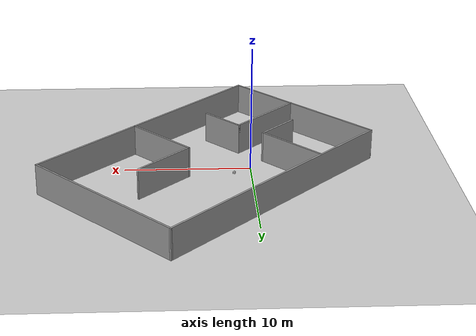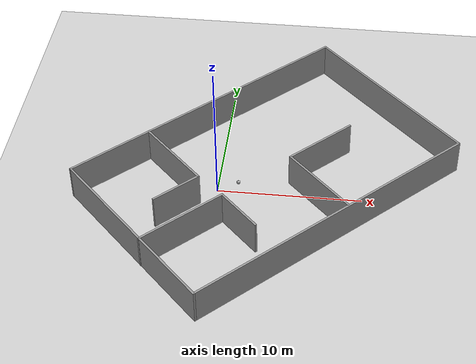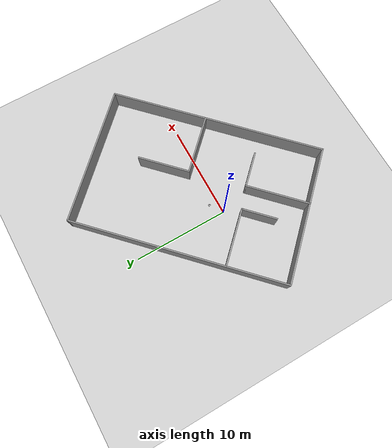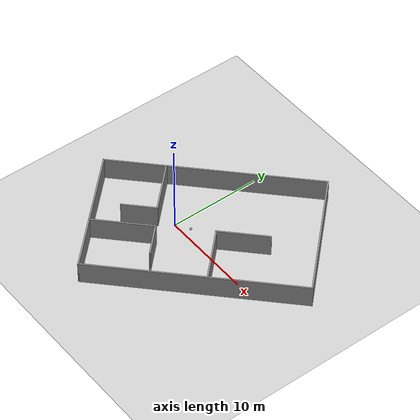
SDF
<sdf version="1.7">
 <world name="default">
  <light name="sun" type="directional">
   <pose>0 0 10 0 -0 0</pose>
   <diffuse>0.8 0.8 0.8 1</diffuse>
   <specular>0.2 0.2 0.2 1</specular>
   <attenuation>
    <range>1000</range>
    <constant>0.9</constant>
    <linear>0.01</linear>
    <quadratic>0.001</quadratic>
   </attenuation>
   <direction>-0.5 0.1 -0.9</direction>
   <spot><inner_angle>0</inner_angle><outer_angle>0</outer_angle><falloff>0</falloff></spot>
  </light>
  <model name="ground_plane">
   <static>1</static>
   <link name="link">
    <collision name="collision">
     <geometry><plane><normal>0 0 1</normal><size>100 100</size></plane></geometry>
     <surface><friction><ode><mu>100</mu><mu2>50</mu2></ode></friction></surface>
    </collision>
    <visual name="visual">
     <cast_shadows>0</cast_shadows>
     <geometry><plane><normal>0 0 1</normal><size>100 100</size></plane></geometry>
     <material>
      <script><uri>file://media/materials/scripts/gazebo.material</uri><name>Gazebo/Grey</name></script>
     </material>
    </visual>
   </link>
  </model>
  <gravity>0 0 -9.8</gravity>
  <magnetic_field>6e-06 2.3e-05 -4.2e-05</magnetic_field>
  <atmosphere type="adiabatic"/>
  <physics type="ode">
   <max_step_size>0.001</max_step_size>
   <real_time_factor>1</real_time_factor>
   <real_time_update_rate>1000</real_time_update_rate>
  </physics>
  <scene><ambient>0.4 0.4 0.4 1</ambient><background>0.7 0.7 0.7 1</background><shadows>1</shadows></scene>
  <audio><device>default</device></audio>
  <spherical_coordinates>
   <surface_model>EARTH_WGS84</surface_model>
   <latitude_deg>0</latitude_deg>
   <longitude_deg>0</longitude_deg>
   <elevation>0</elevation>
   <heading_deg>0</heading_deg>
  </spherical_coordinates>
  <model name="home">
   <pose>3.33692 1.20099 0 0 -0 0.770729</pose>
   <link name="Wall_15">
    <collision name="Wall_15_Collision">
     <geometry><box><size>14.5 0.15 2.5</size></box></geometry>
     <pose>0 0 1.25 0 -0 0</pose>
    </collision>
    <visual name="Wall_15_Visual">
     <pose>0 0 1.25 0 -0 0</pose>
     <geometry><box><size>14.5 0.15 2.5</size></box></geometry>
     <material>
      <script><uri>file://media/materials/scripts/gazebo.material</uri><name>Gazebo/Grey</name></script>
      <ambient>1 1 1 1</ambient>
     </material>
     <meta><layer>0</layer></meta>
    </visual>
    <pose>-11.2924 -9.4e-05 0 0 -0 -1.5708</pose>
   </link>
   <link name="Wall_16">
    <collision name="Wall_16_Collision">
     <geometry><box><size>22.75 0.15 2.5</size></box></geometry>
     <pose>0 0 1.25 0 -0 0</pose>
    </collision>
    <visual name="Wall_16_Visual">
     <pose>0 0 1.25 0 -0 0</pose>
     <geometry><box><size>22.75 0.15 2.5</size></box></geometry>
     <material>
      <script><uri>file://media/materials/scripts/gazebo.material</uri><name>Gazebo/Grey</name></script>
      <ambient>1 1 1 1</ambient>
     </material>
     <meta><layer>0</layer></meta>
    </visual>
    <pose>0.007836 -7.175 0 0 -0 8e-06</pose>
   </link>
   <link name="Wall_17">
    <collision name="Wall_17_Collision">
     <geometry><box><size>14.5 0.15 2.5</size></box></geometry>
     <pose>0 0 1.25 0 -0 0</pose>
    </collision>
    <visual name="Wall_17_Visual">
     <pose>0 0 1.25 0 -0 0</pose>
     <geometry><box><size>14.5 0.15 2.5</size></box></geometry>
     <material>
      <script><uri>file://media/materials/scripts/gazebo.material</uri><name>Gazebo/Grey</name></script>
      <ambient>1 1 1 1</ambient>
     </material>
     <meta><layer>0</layer></meta>
    </visual>
    <pose>11.3081 9.4e-05 0 0 -0 1.5708</pose>
   </link>
   <link name="Wall_19">
    <collision name="Wall_19_Collision">
     <geometry><box><size>22.7505 0.15 2.5</size></box></geometry>
     <pose>0 0 1.25 0 -0 0</pose>
    </collision>
    <visual name="Wall_19_Visual">
     <pose>0 0 1.25 0 -0 0</pose>
     <geometry><box><size>22.7505 0.15 2.5</size></box></geometry>
     <material>
      <script><uri>file://media/materials/scripts/gazebo.material</uri><name>Gazebo/Grey</name></script>
      <ambient>1 1 1 1</ambient>
     </material>
     <meta><layer>0</layer></meta>
    </visual>
    <pose>0.007836 7.175 0 0 -0 8e-06</pose>
   </link>
   <link name="Wall_21">
    <collision name="Wall_21_Collision">
     <geometry><box><size>6 0.15 2.5</size></box></geometry>
     <pose>0 0 1.25 0 -0 0</pose>
    </collision>
    <visual name="Wall_21_Visual">
     <pose>0 0 1.25 0 -0 0</pose>
     <geometry><box><size>6 0.15 2.5</size></box></geometry>
     <material>
      <script><uri>file://media/materials/scripts/gazebo.material</uri><name>Gazebo/Grey</name></script>
      <ambient>1 1 1 1</ambient>
     </material>
     <meta><layer>0</layer></meta>
    </visual>
    <pose>-4.92717 4.17629 0 0 -0 -1.5708</pose>
   </link>
   <link name="Wall_22">
    <collision name="Wall_22_Collision">
     <geometry><box><size>3.75 0.15 2.5</size></box></geometry>
     <pose>0 0 1.25 0 -0 0</pose>
    </collision>
    <visual name="Wall_22_Visual">
     <pose>0 0 1.25 0 -0 0</pose>
     <geometry><box><size>3.75 0.15 2.5</size></box></geometry>
     <material>
      <script><uri>file://media/materials/scripts/gazebo.material</uri><name>Gazebo/Grey</name></script>
      <ambient>1 1 1 1</ambient>
     </material>
     <meta><layer>0</layer></meta>
    </visual>
    <pose>-6.72717 1.25129 0 0 -0 3.14159</pose>
   </link>
   <link name="Wall_26">
    <collision name="Wall_26_Collision">
     <geometry><box><size>6.75 0.15 2.5</size></box></geometry>
     <pose>0 0 1.25 0 -0 0</pose>
    </collision>
    <visual name="Wall_26_Visual">
     <pose>0 0 1.25 0 -0 0</pose>
     <geometry><box><size>6.75 0.15 2.5</size></box></geometry>
     <material>
      <script><uri>file://media/materials/scripts/gazebo.material</uri><name>Gazebo/Grey</name></script>
      <ambient>1 1 1 1</ambient>
     </material>
     <meta><layer>0</layer></meta>
    </visual>
    <pose>-8.00808 -1.18825 0 0 -0 0</pose>
   </link>
   <link name="Wall_27">
    <collision name="Wall_27_Collision">
     <geometry><box><size>3.75 0.15 2.5</size></box></geometry>
     <pose>0 0 1.25 0 -0 0</pose>
    </collision>
    <visual name="Wall_27_Visual">
     <pose>0 0 1.25 0 -0 0</pose>
     <geometry><box><size>3.75 0.15 2.5</size></box></geometry>
     <material>
      <script><uri>file://media/materials/scripts/gazebo.material</uri><name>Gazebo/Grey</name></script>
      <ambient>1 1 1 1</ambient>
     </material>
     <meta><layer>0</layer></meta>
    </visual>
    <pose>-4.70808 -2.98825 0 0 -0 -1.5708</pose>
   </link>
   <link name="Wall_29">
    <collision name="Wall_29_Collision">
     <geometry><box><size>6.25 0.15 2.5</size></box></geometry>
     <pose>0 0 1.25 0 -0 0</pose>
    </collision>
    <visual name="Wall_29_Visual">
     <pose>0 0 1.25 0 -0 0</pose>
     <geometry><box><size>6.25 0.15 2.5</size></box></geometry>
     <material>
      <script><uri>file://media/materials/scripts/gazebo.material</uri><name>Gazebo/Grey</name></script>
      <ambient>1 1 1 1</ambient>
     </material>
     <meta><layer>0</layer></meta>
    </visual>
    <pose>1.23392 -4.10334 0 0 -0 1.5708</pose>
   </link>
   <link name="Wall_30">
    <collision name="Wall_30_Collision">
     <geometry><box><size>5.5 0.15 2.5</size></box></geometry>
     <pose>0 0 1.25 0 -0 0</pose>
    </collision>
    <visual name="Wall_30_Visual">
     <pose>0 0 1.25 0 -0 0</pose>
     <geometry><box><size>5.5 0.15 2.5</size></box></geometry>
     <material>
      <script><uri>file://media/materials/scripts/gazebo.material</uri><name>Gazebo/Grey</name></script>
      <ambient>1 1 1 1</ambient>
     </material>
     <meta><layer>0</layer></meta>
    </visual>
    <pose>3.90892 -1.05334 0 0 -0 0</pose>
   </link>
   <static>1</static>
  </model>
  <model name="car">
   <link name="base_footprint">
    <inertial>
     <pose>0.000926 0 0.095565 0 -0 0</pose>
     <mass>1.08</mass>
     <inertia>
      <ixx>0.00465223</ixx>
      <ixy>0</ixy>
      <ixz>-7.04352e-05</ixz>
      <iyy>0.0048713</iyy>
      <iyz>0</iyz>
      <izz>0.00524496</izz>
     </inertia>
    </inertial>
    <collision name="base_footprint_fixed_joint_lump__base_link_collision">
     <pose>0 0 0.091 0 -0 0</pose>
     <geometry><cylinder><length>0.12</length><radius>0.12</radius></cylinder></geometry>
    </collision>
    <collision name="base_footprint_fixed_joint_lump__back_caster_link_collision_1">
     <pose>-0.08 0 0.015 0 -0 0</pose>
     <geometry><sphere><radius>0.016</radius></sphere></geometry>
     <surface>
      <contact><ode><kp>1e+09</kp><kd>1</kd></ode></contact>
      <friction><ode><mu>0</mu><mu2>0</mu2></ode></friction>
     </surface>
    </collision>
    <collision name="base_footprint_fixed_joint_lump__camera_link_collision_2">
     <pose>0.1 0 0.166 0 -0 0</pose>
     <geometry><box><size>0.02 0.1 0.02</size></box></geometry>
    </collision>
    <collision name="base_footprint_fixed_joint_lump__front_caster_link_collision_3">
     <pose>0.08 0 0.015 0 -0 0</pose>
     <geometry><sphere><radius>0.016</radius></sphere></geometry>
     <surface>
      <contact><ode><kp>1e+09</kp><kd>1</kd></ode></contact>
      <friction><ode><mu>0</mu><mu2>0</mu2></ode></friction>
     </surface>
    </collision>
    <collision name="base_footprint_fixed_joint_lump__imu_link_collision_4">
     <pose>0 0 0.111 0 -0 0</pose>
     <geometry><box><size>0.02 0.02 0.02</size></box></geometry>
    </collision>
    <collision name="base_footprint_fixed_joint_lump__laser_cylinder_link_collision_5">
     <pose>0 0 0.191 0 -0 0</pose>
     <geometry><cylinder><length>0.1</length><radius>0.01</radius></cylinder></geometry>
    </collision>
    <collision name="base_footprint_fixed_joint_lump__laser_link_collision_6">
     <pose>0 0 0.241 0 -0 0</pose>
     <geometry><cylinder><length>0.02</length><radius>0.02</radius></cylinder></geometry>
    </collision>
    <visual name="base_footprint_fixed_joint_lump__base_link_visual">
     <pose>0 0 0.091 0 -0 0</pose>
     <geometry><cylinder><length>0.12</length><radius>0.12</radius></cylinder></geometry>
    </visual>
    <visual name="base_footprint_fixed_joint_lump__back_caster_link_visual_1">
     <pose>-0.08 0 0.015 0 -0 0</pose>
     <geometry><sphere><radius>0.016</radius></sphere></geometry>
    </visual>
    <visual name="base_footprint_fixed_joint_lump__camera_link_visual_2">
     <pose>0.1 0 0.166 0 -0 0</pose>
     <geometry><box><size>0.02 0.1 0.02</size></box></geometry>
    </visual>
    <visual name="base_footprint_fixed_joint_lump__front_caster_link_visual_3">
     <pose>0.08 0 0.015 0 -0 0</pose>
     <geometry><sphere><radius>0.016</radius></sphere></geometry>
    </visual>
    <visual name="base_footprint_fixed_joint_lump__imu_link_visual_4">
     <pose>0 0 0.111 0 -0 0</pose>
     <geometry><box><size>0.02 0.02 0.02</size></box></geometry>
    </visual>
    <visual name="base_footprint_fixed_joint_lump__laser_cylinder_link_visual_5">
     <pose>0 0 0.191 0 -0 0</pose>
     <geometry><cylinder><length>0.1</length><radius>0.01</radius></cylinder></geometry>
     <material>
      <script><name>Gazebo/Black</name><uri>file://media/materials/scripts/gazebo.material</uri></script>
     </material>
    </visual>
    <visual name="base_footprint_fixed_joint_lump__laser_link_visual_6">
     <pose>0 0 0.241 0 -0 0</pose>
     <geometry><cylinder><length>0.02</length><radius>0.02</radius></cylinder></geometry>
     <material>
      <script><name>Gazebo/Black</name><uri>file://media/materials/scripts/gazebo.material</uri></script>
     </material>
    </visual>
    <sensor name="camera_sensor" type="depth">
     <plugin name="depth_camera" filename="libgazebo_ros_camera.so">
      <frame_name>camera_optical_link</frame_name>
     </plugin>
     <always_on>1</always_on>
     <update_rate>10</update_rate>
     <camera name="camera">
      <horizontal_fov>1.50098</horizontal_fov>
      <image><width>800</width><height>600</height><format>R8G8B8</format></image>
      <distortion><k1>0</k1><k2>0</k2><k3>0</k3><p1>0</p1><p2>0</p2><center>0.5 0.5</center></distortion>
      <clip><near>0.1</near><far>100</far></clip>
     </camera>
     <pose>0.1 0 0.166 0 -0 0</pose>
    </sensor>
    <sensor name="imu_sensor" type="imu">
     <plugin name="imu_plugin" filename="libgazebo_ros_imu_sensor.so">
      <ros><namespace>/</namespace><remapping>~/out:=imu</remapping></ros>
      <initial_orientation_as_reference>0</initial_orientation_as_reference>
     </plugin>
     <update_rate>100</update_rate>
     <always_on>1</always_on>
     <imu>
      <angular_velocity>
       <x>
        <noise type="gaussian">
         <mean>0</mean>
         <stddev>0.0002</stddev>
         <bias_mean>7.5e-06</bias_mean>
         <bias_stddev>8e-07</bias_stddev>
        </noise>
       </x>
       <y>
        <noise type="gaussian">
         <mean>0</mean>
         <stddev>0.0002</stddev>
         <bias_mean>7.5e-06</bias_mean>
         <bias_stddev>8e-07</bias_stddev>
        </noise>
       </y>
       <z>
        <noise type="gaussian">
         <mean>0</mean>
         <stddev>0.0002</stddev>
         <bias_mean>7.5e-06</bias_mean>
         <bias_stddev>8e-07</bias_stddev>
        </noise>
       </z>
      </angular_velocity>
      <linear_acceleration>
       <x>
        <noise type="gaussian">
         <mean>0</mean>
         <stddev>0.017</stddev>
         <bias_mean>0.1</bias_mean>
         <bias_stddev>0.001</bias_stddev>
        </noise>
       </x>
       <y>
        <noise type="gaussian">
         <mean>0</mean>
         <stddev>0.017</stddev>
         <bias_mean>0.1</bias_mean>
         <bias_stddev>0.001</bias_stddev>
        </noise>
       </y>
       <z>
        <noise type="gaussian">
         <mean>0</mean>
         <stddev>0.017</stddev>
         <bias_mean>0.1</bias_mean>
         <bias_stddev>0.001</bias_stddev>
        </noise>
       </z>
      </linear_acceleration>
     </imu>
     <pose>0 0 0.111 0 -0 0</pose>
    </sensor>
    <sensor name="laserscan" type="ray">
     <plugin name="laserscan" filename="libgazebo_ros_ray_sensor.so">
      <ros><namespace>/</namespace><remapping>~/out:=scan</remapping></ros>
      <output_type>sensor_msgs/LaserScan</output_type>
      <frame_name>laser_link</frame_name>
     </plugin>
     <always_on>1</always_on>
     <visualize>1</visualize>
     <update_rate>5</update_rate>
     <ray>
      <scan>
       <horizontal>
        <samples>360</samples>
        <resolution>1</resolution>
        <min_angle>0</min_angle>
        <max_angle>6.28</max_angle>
       </horizontal>
       <vertical><samples>1</samples><min_angle>0</min_angle><max_angle>0</max_angle></vertical>
      </scan>
      <range><min>0.12</min><max>8</max><resolution>0.015</resolution></range>
      <noise><type>gaussian</type><mean>0</mean><stddev>0.01</stddev></noise>
     </ray>
     <pose>0 0 0.241 0 -0 0</pose>
    </sensor>
   </link>
   <joint name="left_wheel_joint" type="revolute">
    <pose relative_to="base_footprint">0 0.1 0.031 0 -0 0</pose>
    <parent>base_footprint</parent>
    <child>left_wheel_link</child>
    <axis>
     <xyz>0 1 0</xyz>
     <limit><lower>-1e+16</lower><upper>1e+16</upper></limit>
     <dynamics><spring_reference>0</spring_reference><spring_stiffness>0</spring_stiffness></dynamics>
    </axis>
   </joint>
   <link name="left_wheel_link">
    <pose relative_to="left_wheel_joint">0 0 0 0 -0 0</pose>
    <inertial>
     <mass>0.1</mass>
     <inertia>
      <ixx>3.89333e-05</ixx>
      <ixy>0</ixy>
      <ixz>0</ixz>
      <iyy>3.89333e-05</iyy>
      <iyz>0</iyz>
      <izz>5.12e-05</izz>
     </inertia>
    </inertial>
    <collision name="left_wheel_link_collision">
     <pose>0 0 0 1.57079 -0 0</pose>
     <geometry><cylinder><length>0.04</length><radius>0.032</radius></cylinder></geometry>
     <surface>
      <contact><ode><kp>1e+09</kp><kd>1</kd></ode></contact>
      <friction><ode><mu>20</mu><mu2>20</mu2></ode></friction>
     </surface>
    </collision>
    <visual name="left_wheel_link_visual">
     <pose>0 0 0 1.57079 -0 0</pose>
     <geometry><cylinder><length>0.04</length><radius>0.032</radius></cylinder></geometry>
    </visual>
   </link>
   <joint name="right_wheel_joint" type="revolute">
    <pose relative_to="base_footprint">0 -0.1 0.031 0 -0 0</pose>
    <parent>base_footprint</parent>
    <child>right_wheel_link</child>
    <axis>
     <xyz>0 1 0</xyz>
     <limit><lower>-1e+16</lower><upper>1e+16</upper></limit>
     <dynamics><spring_reference>0</spring_reference><spring_stiffness>0</spring_stiffness></dynamics>
    </axis>
   </joint>
   <link name="right_wheel_link">
    <pose relative_to="right_wheel_joint">0 0 0 0 -0 0</pose>
    <inertial>
     <mass>0.1</mass>
     <inertia>
      <ixx>3.89333e-05</ixx>
      <ixy>0</ixy>
      <ixz>0</ixz>
      <iyy>3.89333e-05</iyy>
      <iyz>0</iyz>
      <izz>5.12e-05</izz>
     </inertia>
    </inertial>
    <collision name="right_wheel_link_collision">
     <pose>0 0 0 1.57079 -0 0</pose>
     <geometry><cylinder><length>0.04</length><radius>0.032</radius></cylinder></geometry>
     <surface>
      <contact><ode><kp>1e+09</kp><kd>1</kd></ode></contact>
      <friction><ode><mu>20</mu><mu2>20</mu2></ode></friction>
     </surface>
    </collision>
    <visual name="right_wheel_link_visual">
     <pose>0 0 0 1.57079 -0 0</pose>
     <geometry><cylinder><length>0.04</length><radius>0.032</radius></cylinder></geometry>
    </visual>
   </link>
   <static>0</static>
   <plugin name="gazebo_ros2_control" filename="libgazebo_ros2_control.so">
    <parameters>/shared/ws1_stu/install/cpp2_slam/share/cpp2_slam/config/car_ros2_controller.yaml</parameters>
    <ros>
     <remapping>/car_diff_drive_controller/cmd_vel_unstamped:=/cmd_vel</remapping>
     <remapping>/car_diff_drive_controller/odom:=/odom</remapping>
    </ros>
   </plugin>
   <pose>1.36862 0.929902 0.001 -1e-06 0 -2.66732</pose>
  </model>
 </world>
</sdf>
